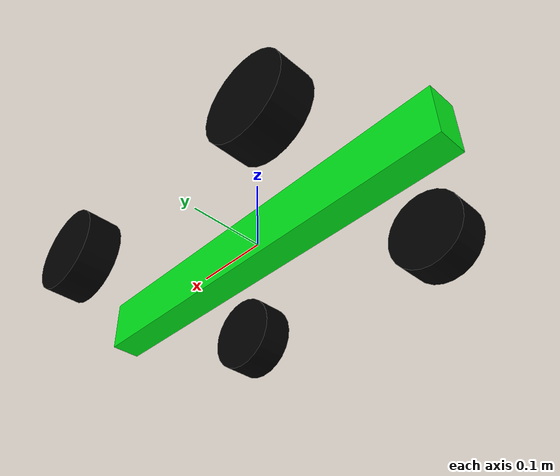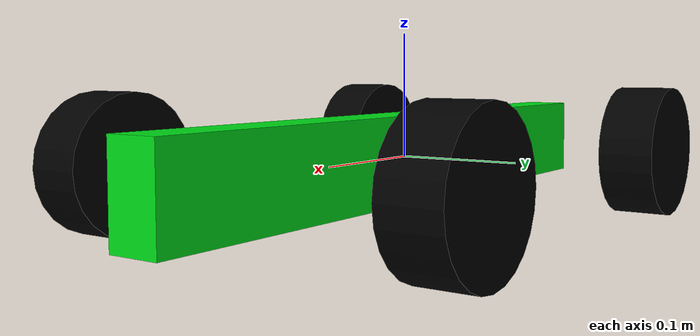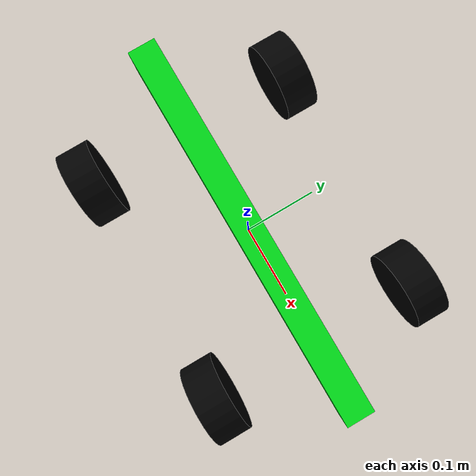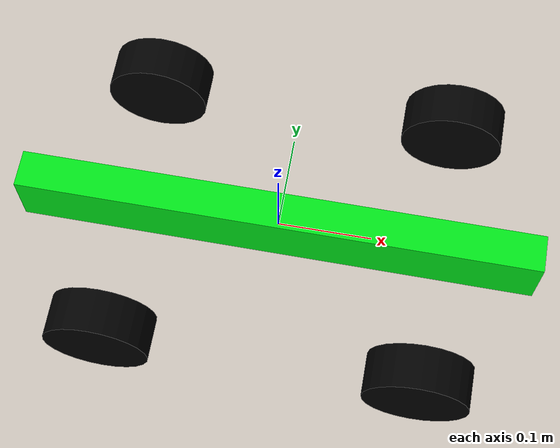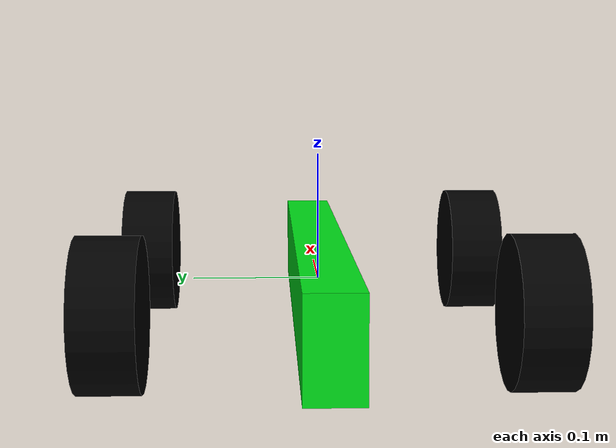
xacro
<?xml version="1.0"?>
<robot xmlns:xacro="http://www.ros.org/wiki/xacro" >

  <xacro:include filename="inertial_macros.xacro"/>

  <!-- Define robot constants -->
  <xacro:property name="base_width" value="0.04"/>
  <xacro:property name="base_length" value="0.56"/>
  <xacro:property name="base_height" value="0.07"/>
  <xacro:property name="base_mass" value="0.07"/>
  <xacro:property name="wheel_radius" value="0.055"/>
  <xacro:property name="wheel_width" value="0.045"/>
  <xacro:property name="wheel_mass" value="0.05"/>
  <xacro:property name="wheel_offset_x_front" value="0.17"/>
  <xacro:property name="wheel_offset_x_rear" value="0.16"/>
  <xacro:property name="wheel_offset_y" value="0.1485"/>

  <material name="blue">
    <color rgba="0 0 0.8 1"/>
  </material>
  <material name="black">
    <color rgba="0 0 0 1"/>
  </material>
  <material name="white">
    <color rgba="1 1 1 1"/>
  </material>
  <material name="lime">
    <color rgba="0 0.9 0.1 1"/>
  </material>
  <material name="silver">
    <color rgba="0.75 0.75 0.75 1"/>
  </material>
  <material name="orange">
    <color rgba="1 0.3 0.1 1"/>
  </material>
  <material name="red">
    <color rgba="1 0 0 1"/>
  </material>

  <!-- Robot Base -->
  <link name="base_link">
  <visual>
    <geometry>
      <box size="${base_length} ${base_width} ${base_height}"/>
    </geometry>
      <material name="lime"/>
  </visual>
  <collision>
    <geometry>
      <box size="${base_length} ${base_width} ${base_height}"/>
    </geometry>
  </collision>
  <xacro:inertial_box mass="${base_mass}" x="${base_length}" y="${base_width}" z="${base_height}">
    <origin xyz="${base_length/2} 0 ${base_height/2}" rpy="0 0 0"/>
  </xacro:inertial_box>
  </link>

  <!-- Robot Footprint -->
  <link name="base_footprint"/>
  <joint name="base_joint" type="fixed">
    <parent link="base_link"/>
    <child link="base_footprint"/>
    <origin xyz="0.0 0.0 ${-wheel_radius}" rpy="0 0 0"/>
  </joint>

  <!-- Right rear wheel -->
  <link name="right_rear_wheel_link">
    <visual>
      <origin rpy="${-pi/2} 0 0" xyz="0 0 0"/>
      <geometry>
        <cylinder length="${wheel_width}" radius="${wheel_radius}"/>
      </geometry>
      <material name="black"/>
    </visual>
    <collision>
      <origin rpy="${-pi/2} 0 0" xyz="0 0 0"/>
      <geometry>
        <cylinder length="${wheel_width}" radius="${wheel_radius}"/>
      </geometry>
    </collision>
    <xacro:inertial_cylinder mass="${wheel_mass}" length="${wheel_width}" radius="${wheel_radius}">
      <origin xyz="0 0 0" rpy="0 0 0"/>
    </xacro:inertial_cylinder>
    <velocity_decay/>
  </link>
  <gazebo reference="right_rear_wheel_link">
    <material>Gazebo/Blue</material>
    <mu1>10.5</mu1>
    <mu2>1.0</mu2>
    <fdir1>0 0 1</fdir1>
    <gravity>true</gravity>
  </gazebo>
  <joint name="right_rear_wheel_joint" type="revolute">
    <parent link="base_link"/>
    <child link="right_rear_wheel_link"/>
    <origin rpy="0 0 0" xyz="${-wheel_offset_x_rear} ${-wheel_offset_y} 0"/>
    <axis xyz="0 1 0"/>
    <limit effort="25" lower="-1.79769e+308" upper="1.79769e+308" velocity="100"/>
    <dynamics damping="0.0" friction="0.0"/>
  </joint>

  <!-- Left rear wheel -->
  <link name="left_rear_wheel_link">
    <visual>
      <origin rpy="${-pi/2} 0 0" xyz="0 0 0"/>
      <geometry>
        <cylinder length="${wheel_width}" radius="${wheel_radius}"/>
      </geometry>
      <material name="black"/>
    </visual>
    <collision>
      <origin rpy="${-pi/2} 0 0" xyz="0 0 0"/>
      <geometry>
        <cylinder length="${wheel_width}" radius="${wheel_radius}"/>
      </geometry>
    </collision>
    <xacro:inertial_cylinder mass="${wheel_mass}" length="${wheel_width}" radius="${wheel_radius}">
      <origin xyz="0 0 0" rpy="0 0 0"/>
    </xacro:inertial_cylinder>
    <velocity_decay/>
  </link>
  <gazebo reference="left_rear_wheel_link">
    <material>Gazebo/Blue</material>
    <mu1>10.5</mu1>
    <mu2>1.0</mu2>
    <fdir1>0 0 1</fdir1>
    <gravity>true</gravity>
  </gazebo>
  <joint name="left_rear_wheel_joint" type="revolute">
    <parent link="base_link"/>
    <child link="left_rear_wheel_link"/>
    <origin rpy="0 0 0" xyz="${-wheel_offset_x_rear} ${wheel_offset_y} 0"/>
    <axis xyz="0 1 0"/>
    <limit effort="25" lower="-1.79769e+308" upper="1.79769e+308" velocity="100"/>
    <dynamics damping="0.0" friction="0.0"/>
  </joint>

  <!-- Left front wheel and steering -->
  <link name="left_front_wheel_steering_link">
    <inertial>
      <mass value="0.005"/>
      <inertia ixx=".0000018" ixy="0" ixz="0" iyy=".0000018" iyz="0" izz=".0000018"/>
    </inertial>
  </link>
  <joint name="left_front_wheel_steering_joint" type="revolute">
    <parent link="base_link"/>
    <child link="left_front_wheel_steering_link"/>
    <origin rpy="0 0 0" xyz="${wheel_offset_x_front} ${wheel_offset_y} 0"/>
    <axis xyz="0 0 1"/>
    <limit effort="25" lower="-0.6" upper="0.6" velocity="1.0"/>
  </joint>

  <link name="left_front_wheel_link">
    <visual>
      <origin rpy="${-pi/2} 0 0" xyz="0 0 0"/>
      <geometry>
        <cylinder length="${wheel_width}" radius="${wheel_radius}"/>
      </geometry>
      <material name="black"/>
    </visual>
    <collision>
      <origin rpy="${-pi/2} 0 0" xyz="0 0 0"/>
      <geometry>
        <cylinder length="${wheel_width}" radius="${wheel_radius}"/>
      </geometry>
    </collision>
    <xacro:inertial_cylinder mass="${wheel_mass}" length="${wheel_width}" radius="${wheel_radius}">
      <origin xyz="0 0 0" rpy="0 0 0"/>
    </xacro:inertial_cylinder>
    <velocity_decay/>
  </link>
  <gazebo reference="left_front_wheel_link">
    <material>Gazebo/Blue</material>
    <mu1>10.5</mu1>
    <mu2>1.0</mu2>
    <fdir1>0 0 1</fdir1>
    <gravity>true</gravity>
  </gazebo>
  <joint name="left_front_wheel_joint" type="revolute">
    <parent link="left_front_wheel_steering_link"/>
    <child link="left_front_wheel_link"/>
    <origin rpy="0 0 0" xyz="0 0 0"/>
    <axis xyz="0 1 0"/>
    <limit effort="25" lower="-1.79769e+308" upper="1.79769e+308" velocity="100"/>
    <dynamics damping="0.0" friction="0.0"/>
  </joint>

  <!-- Right front wheel and steering -->
  <link name="right_front_wheel_steering_link">
    <inertial>
      <mass value="0.005"/>
      <inertia ixx=".0000018" ixy="0" ixz="0" iyy=".0000018" iyz="0" izz=".0000018"/>
    </inertial>
  </link>
  <joint name="right_front_wheel_steering_joint" type="revolute">
    <parent link="base_link"/>
    <child link="right_front_wheel_steering_link"/>
    <origin rpy="0 0 0" xyz="${wheel_offset_x_front} ${-wheel_offset_y} 0"/>
    <axis xyz="0 0 1"/>
    <limit effort="25" lower="-0.6" upper="0.6" velocity="1.0"/>
  </joint>

  <link name="right_front_wheel_link">
    <visual>
      <origin rpy="${-pi/2} 0 0" xyz="0 0 0"/>
      <geometry>
        <cylinder length="${wheel_width}" radius="${wheel_radius}"/>
      </geometry>
      <material name="black"/>
    </visual>
    <collision>
      <origin rpy="${-pi/2} 0 0" xyz="0 0 0"/>
      <geometry>
        <cylinder length="${wheel_width}" radius="${wheel_radius}"/>
      </geometry>
    </collision>
    <xacro:inertial_cylinder mass="${wheel_mass}" length="${wheel_width}" radius="${wheel_radius}">
      <origin xyz="0 0 0" rpy="0 0 0"/>
    </xacro:inertial_cylinder>
    <velocity_decay/>
  </link>
  <gazebo reference="right_front_wheel_link">
    <material>Gazebo/Blue</material>
    <mu1>10.5</mu1>
    <mu2>1.0</mu2>
    <fdir1>0 0 1</fdir1>
    <gravity>true</gravity>
  </gazebo>
  <joint name="right_front_wheel_joint" type="revolute">
    <parent link="right_front_wheel_steering_link"/>
    <child link="right_front_wheel_link"/>
    <origin rpy="0 0 0" xyz="0 0 0"/>
    <axis xyz="0 1 0"/>
    <limit effort="25" lower="-1.79769e+308" upper="1.79769e+308" velocity="100"/>
    <dynamics damping="0.0" friction="0.0"/>
  </joint>
</robot>

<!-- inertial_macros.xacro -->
<robot xmlns:xacro="http://www.ros.org/wiki/xacro" >

    <!-- Specify some standard inertial calculations https://en.wikipedia.org/wiki/List_of_moments_of_inertia -->
    <!-- These make use of xacro's mathematical functionality -->

    <xacro:macro name="inertial_sphere" params="mass radius *origin">
        <inertial>
            <xacro:insert_block name="origin"/>
            <mass value="${mass}" />
            <inertia ixx="${(2/5) * mass * (radius*radius)}" ixy="0.0" ixz="0.0"
                    iyy="${(2/5) * mass * (radius*radius)}" iyz="0.0"
                    izz="${(2/5) * mass * (radius*radius)}" />
        </inertial>
    </xacro:macro>

    <xacro:macro name="inertial_box" params="mass length breadth height *origin">
        <inertial>
            <xacro:insert_block name="origin"/>
            <mass value="${mass}" />
            <inertia ixx="${(1/12) * mass * (breadth*breadth+height*height)}" ixy="0.0" ixz="0.0"
                    iyy="${(1/12) * mass * (length*length+height*height)}" iyz="0.0"
                    izz="${(1/12) * mass * (length*length+breadth*breadth)}" />
        </inertial>
    </xacro:macro>

    <xacro:macro name="inertial_cylinder" params="mass length radius *origin">
        <inertial>
            <xacro:insert_block name="origin"/>
            <mass value="${mass}" />
            <inertia ixx="${(1/12) * mass * (3*radius*radius + length*length)}" ixy="0.0" ixz="0.0"
                    iyy="${(1/12) * mass * (3*radius*radius + length*length)}" iyz="0.0"
                    izz="${(1/2) * mass * (radius*radius)}" />
        </inertial>
    </xacro:macro>

</robot>
